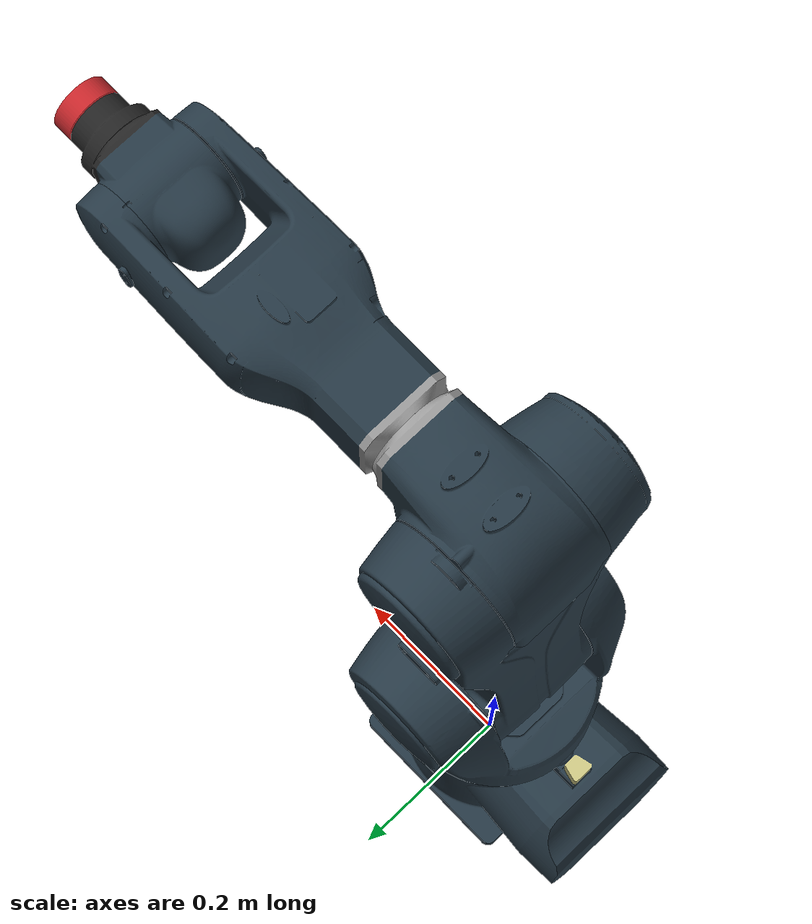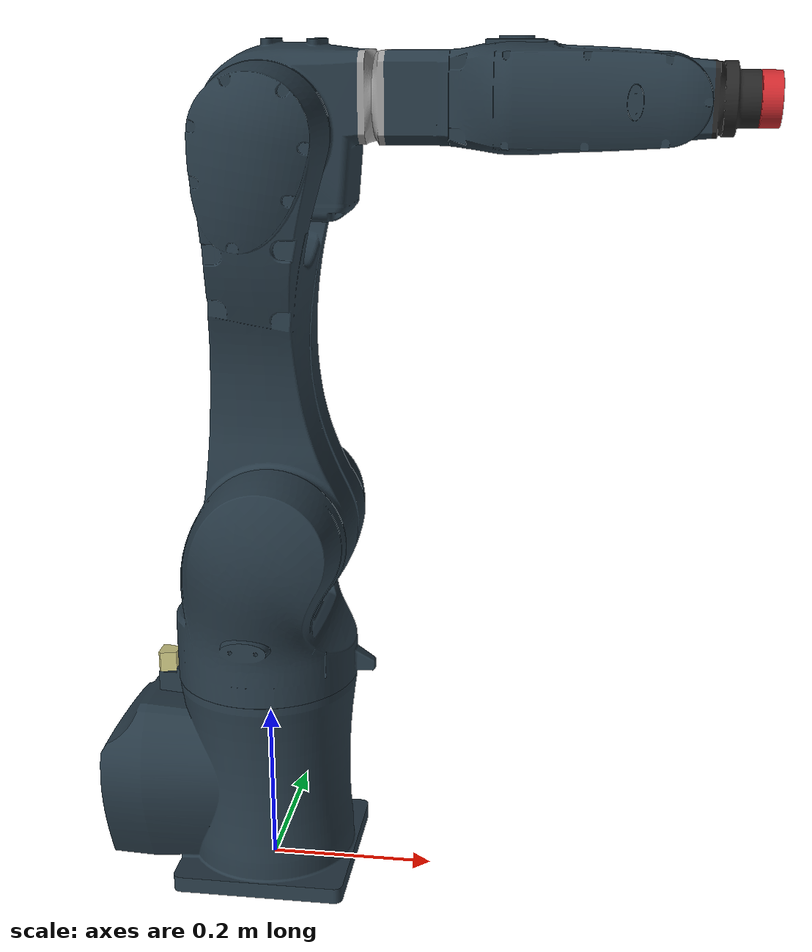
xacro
<?xml version="1.0" ?>
<robot name="za6" xmlns:xacro="http://www.ros.org/wiki/xacro">
  <xacro:arg name="tool" default="none"/>
  <xacro:arg name="stand" default="none"/>
  <xacro:arg name="prefix" default=""/>

  <xacro:include filename="$(find za6_description)/urdf/za6_macro.xacro"/>
  <xacro:za6_macro robotprefix="$(arg prefix)" tool="$(arg tool)" stand="$(arg stand)"/>

  <link name="tcp_lin_link" />
  <joint name="tcp_lin" type="prismatic">
    <parent link="tool0"/>
    <child link="tcp_lin_link"/>
    <limit effort="1000.0" lower="-100.0" upper="100.0" velocity="1.0"/>
  </joint>
  <link name="tool0_tcp" />
  <joint name="tcp_rot" type="prismatic">
    <parent link="tcp_lin_link"/>
    <child link="tool0_tcp"/>
    <limit effort="1000.0" lower="-100.0" upper="100.0" velocity="1.0"/>
  </joint>
</robot>

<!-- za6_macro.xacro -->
<robot xmlns:xacro="http://ros.org/wiki/xacro">
  <xacro:macro name="za6_macro" params="robotprefix tool stand">

    <xacro:if value="${stand == 'none'}">
      <xacro:include filename="$(find za6_description)/urdf/za6_stand_none_macro.xacro"/>
      <xacro:za6_stand_none_macro prefix="${robotprefix}"/>
    </xacro:if>

    <xacro:if value="${stand == 'prototype'}">
      <xacro:include filename="$(find za6_description)/urdf/za6_stand_prototype_macro.xacro"/>
      <xacro:za6_stand_prototype_macro robotprefix="${robotprefix}" standprefix="${robotprefix}"/>
    </xacro:if>

    <xacro:include filename="$(find za6_description)/urdf/za6_robot_macro.xacro"/>
    <xacro:za6_robot_macro prefix="${robotprefix}"/>

    <xacro:if value="${tool == 'none'}">
      <xacro:include filename="$(find za6_description)/urdf/za6_tool_none_macro.xacro"/>
      <xacro:za6_tool_none_macro prefix="${robotprefix}"/>
    </xacro:if>

    <xacro:if value="${tool == 'hand_e'}">
      <xacro:include filename="$(find za6_description)/urdf/za6_tool_hand_e_macro.xacro"/>
      <xacro:za6_tool_hand_e_macro prefix="${robotprefix}"/>
    </xacro:if>

  </xacro:macro>
</robot>

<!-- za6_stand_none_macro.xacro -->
<robot xmlns:xacro="http://ros.org/wiki/xacro">
  <xacro:macro name="za6_stand_none_macro" params="prefix">

    <!-- 'world' frame: default pose reference frame -->
    <link name="world" />
    <joint name="world-${prefix}base_link" type="fixed">
      <origin xyz="0 0 0" rpy="0 0 0"/>
      <axis xyz="0 0 1"/>
      <parent link="world"/>
      <child link="${prefix}base_link"/>
    </joint>

  </xacro:macro>
</robot>

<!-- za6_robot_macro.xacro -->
<robot xmlns:xacro="http://www.ros.org/wiki/xacro">
  <xacro:macro name="za6_robot_macro" params="prefix">
    <xacro:property name="linear_offset_j3" value="-0.001"/>
    <xacro:property name="linear_offset_j5" value="0.001"/>
    <!-- link list -->
    <link name="${prefix}base_link">
      <visual>
        <geometry>
          <mesh filename="package://za6_description/meshes/visual/base_link.dae"/>
        </geometry>
      </visual>
      <collision>
        <geometry>
          <mesh filename="package://za6_description/meshes/collision/base_link_collision.stl"/>
        </geometry>
      </collision>
    </link>
    <link name="${prefix}link_1">
      <visual>
        <geometry>
          <mesh filename="package://za6_description/meshes/visual/link_1.dae"/>
        </geometry>
      </visual>
      <collision>
        <geometry>
          <mesh filename="package://za6_description/meshes/collision/link_1_collision.stl"/>
        </geometry>
      </collision>
      <inertial>
        <mass value="100"/>
        <inertia ixx="1.0" ixy="0.0" ixz="0.0" iyy="1.0" iyz="0.0" izz="1.0"/>
      </inertial>
    </link>

    <link name="${prefix}link_2">
      <visual>
        <geometry>
          <mesh filename="package://za6_description/meshes/visual/link_2.dae"/>
        </geometry>
      </visual>
      <collision>
        <geometry>
          <mesh filename="package://za6_description/meshes/collision/link_2_collision.stl"/>
        </geometry>
      </collision>
      <inertial>
        <mass value="100"/>
        <inertia ixx="1.0" ixy="0.0" ixz="0.0" iyy="1.0" iyz="0.0" izz="1.0"/>
      </inertial>
    </link>

    <link name="${prefix}link_3">
      <visual>
        <geometry>
          <mesh filename="package://za6_description/meshes/visual/link_3.dae"/>
        </geometry>
      </visual>
      <collision>
        <geometry>
          <mesh filename="package://za6_description/meshes/collision/link_3_collision.stl"/>
        </geometry>
      </collision>
      <inertial>
        <mass value="100"/>
        <inertia ixx="1.0" ixy="0.0" ixz="0.0" iyy="1.0" iyz="0.0" izz="1.0"/>
      </inertial>
    </link>

    <link name="${prefix}link_4">
      <visual>
        <geometry>
          <mesh filename="package://za6_description/meshes/visual/link_4.dae"/>
        </geometry>
      </visual>
      <collision>
        <geometry>
          <mesh filename="package://za6_description/meshes/collision/link_4_collision.stl"/>
        </geometry>
      </collision>
      <inertial>
        <mass value="100"/>
        <inertia ixx="1.0" ixy="0.0" ixz="0.0" iyy="1.0" iyz="0.0" izz="1.0"/>
      </inertial>
    </link>

    <link name="${prefix}link_5">
      <visual>
        <geometry>
          <mesh filename="package://za6_description/meshes/visual/link_5.dae"/>
        </geometry>
      </visual>
      <collision>
        <geometry>
          <mesh filename="package://za6_description/meshes/collision/link_5_collision.stl"/>
        </geometry>
      </collision>
      <inertial>
        <mass value="100"/>
        <inertia ixx="1.0" ixy="0.0" ixz="0.0" iyy="1.0" iyz="0.0" izz="1.0"/>
      </inertial>
    </link>

    <link name="${prefix}link_6">
      <visual>
        <geometry>
          <mesh filename="package://za6_description/meshes/visual/link_6.dae"/>
        </geometry>
      </visual>
      <collision>
        <geometry>
          <mesh filename="package://za6_description/meshes/collision/link_6_collision.stl"/>
        </geometry>
      </collision>
      <inertial>
        <mass value="100"/>
        <inertia ixx="1.0" ixy="0.0" ixz="0.0" iyy="1.0" iyz="0.0" izz="1.0"/>
      </inertial>
    </link>

    <!-- joint list -->
    <joint name="${prefix}joint_1" type="revolute">
      <origin rpy="0.0 0.0 0.0" xyz="0 0 0.45"/>
      <axis xyz="0 0 1"/>
      <parent link="${prefix}base_link"/>
      <child link="${prefix}link_1"/>
      <limit effort="1000.0" lower="-2.96" upper="2.96" velocity="2.0"/>
    </joint>

    <joint name="${prefix}joint_2" type="revolute">
      <origin rpy="0.0 0.0 0.0" xyz="0.025 0 0.0"/>
      <axis xyz="0 1 0"/>
      <parent link="${prefix}link_1"/>
      <child link="${prefix}link_2"/>
      <limit effort="1000.0" lower="-1.74" upper="2.35" velocity="3.1"/>
    </joint>

    <xacro:arg name="mastering" default="false"/>
    <xacro:property name="mastering" value="$(arg mastering)"/>
    <xacro:property name="j3_lower_limit" value="${-3.7 if mastering else -2.0}"/>
    <xacro:property name="j6_limit" value="${2.0*pi}"/>

    <joint name="${prefix}joint_3" type="revolute">
      <origin rpy="0.0 0.0 0.0" xyz="0.0 ${linear_offset_j3} 0.454"/>
      <axis xyz="0 1 0"/>
      <parent link="${prefix}link_2"/>
      <child link="${prefix}link_3"/>
      <limit effort="1000.0" lower="${j3_lower_limit}" upper="1.15" velocity="3.9"/>
    </joint>

    <joint name="${prefix}joint_4" type="revolute">
      <origin rpy="0.0 0.0 0.0" xyz="0.0 0.0 0.035"/>
      <axis xyz="1 0 0"/>
      <parent link="${prefix}link_3"/>
      <child link="${prefix}link_4"/>
      <limit effort="1000.0" lower="-3.1415" upper="3.1415" velocity="3.0"/>
    </joint>

    <joint name="${prefix}joint_5" type="revolute">
      <origin rpy="0.0 0.0 0.0" xyz="0.4195 ${linear_offset_j5} 0.0"/>
      <axis xyz="0 1 0"/>
      <parent link="${prefix}link_4"/>
      <child link="${prefix}link_5"/>
      <limit effort="1000.0" lower="-2.49" upper="2.49" velocity="3.8"/>
    </joint>

    <joint name="${prefix}joint_6" type="revolute">
      <origin rpy="0.0 0.0 0.0" xyz="0.1175 0.0 0.0"/>
      <axis xyz="1 0 0"/>
      <parent link="${prefix}link_5"/>
      <child link="${prefix}link_6"/>
      <limit effort="1000.0" lower="${-j6_limit}" upper="${j6_limit}" velocity="6.2"/>
    </joint>

    <!-- ROS-Industrial 'base' frame: base_link to Fanuc World Coordinates transform -->
    <link name="${prefix}base" />
    <joint name="${prefix}base_link-base" type="fixed">
      <origin xyz="0 0 0" rpy="0 0 0"/>
      <axis xyz="0 0 1"/>
      <parent link="${prefix}base_link"/>
      <child link="${prefix}base"/>
    </joint>

    <!-- ROS-Industrial 'flange' frame: attachment point for EEF models -->
    <link name="${prefix}flange" />
    <joint name="${prefix}joint_6-flange" type="fixed">
      <origin xyz="0 0 0" rpy="${pi*1} ${-pi*0.5} 0" />
      <parent link="${prefix}link_6" />
      <child link="${prefix}flange" />
    </joint>

  </xacro:macro>
</robot>

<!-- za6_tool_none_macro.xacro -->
<robot xmlns:xacro="http://ros.org/wiki/xacro">
  <xacro:macro name="za6_tool_none_macro" params="prefix">

    <!-- ROS-Industrial 'tool0' frame: all-zeros tool frame -->
    <link name="${prefix}tool0" />
    <joint name="${prefix}flange-tool0" type="fixed">
      <!-- marker -->
      <origin xyz="0 0 0" rpy="0 0 0" />
      <parent link="${prefix}flange" />
      <child link="${prefix}tool0" />
    </joint>

  </xacro:macro>
</robot>
